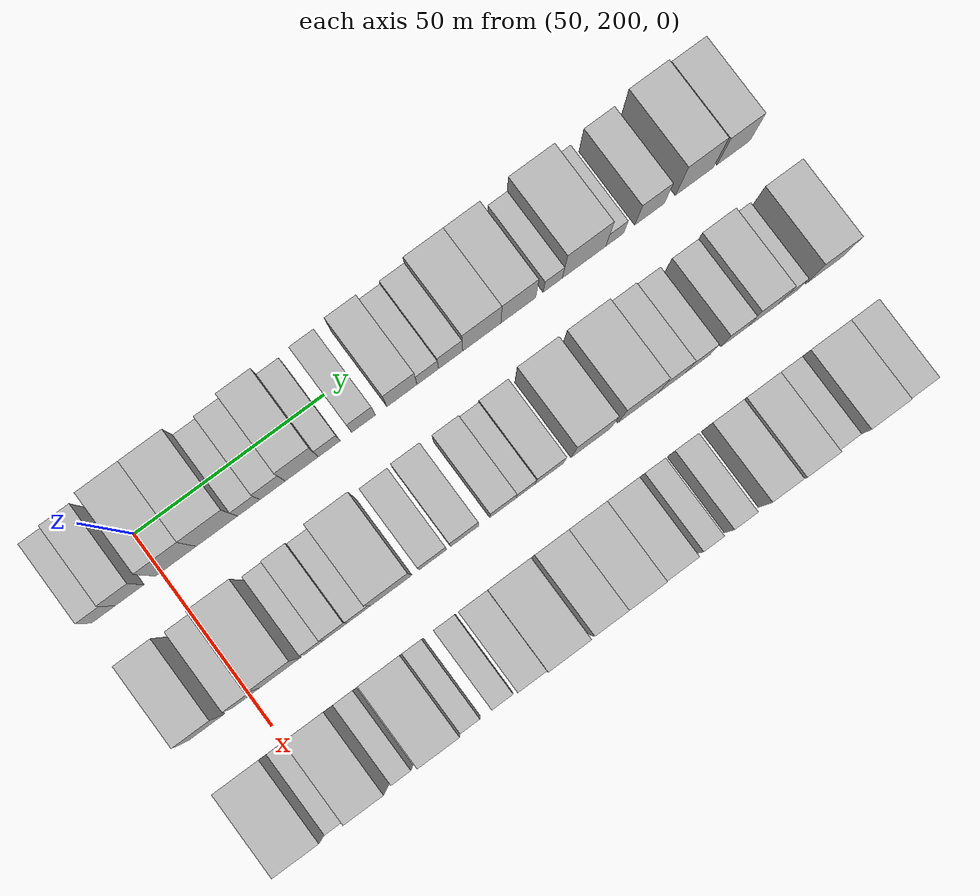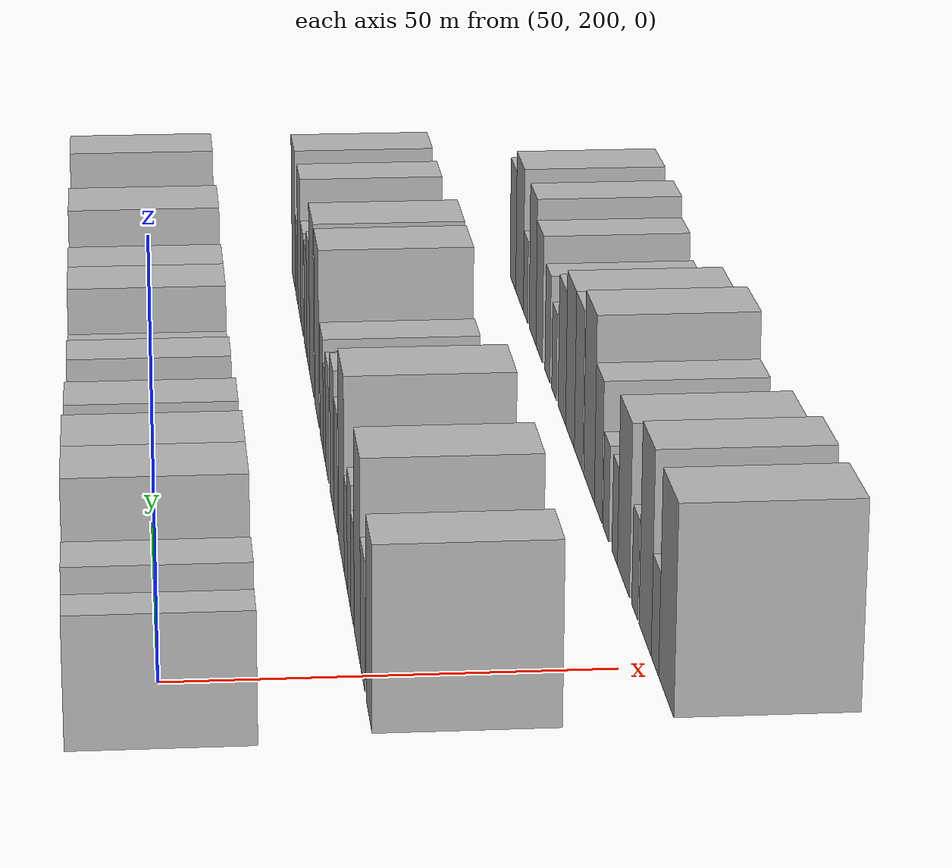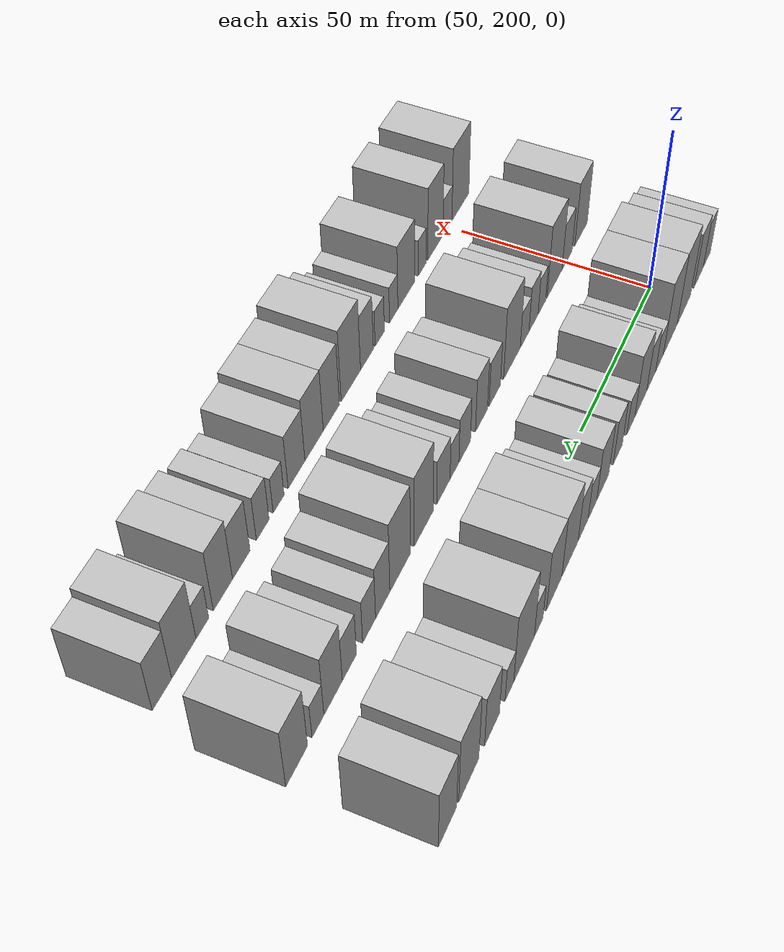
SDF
<sdf version="1.6">
 <world name="default">
  <model name="building_60">
   <static>1</static>
   <pose>50.0000 185.1954 0 0.000000 0.000000 0.000000</pose>
   <link name="link">
    <pose>0 0 7.50 0 0 0</pose>
    <collision name="collision"><geometry><box><size>20.0000 6.0156 15.0000</size></box></geometry></collision>
    <visual name="visual">
     <cast_shadows>0</cast_shadows>
     <geometry><box><size>20.0000 6.0156 15.0000</size></box></geometry>
     <material>
      <script>
       <uri>model://HANNAS_wall/materials/scripts</uri>
       <uri>model://HANNAS_wall/materials/textures</uri>
       <name>vrc/HANNAS_wall</name>
      </script>
     </material>
    </visual>
   </link>
  </model>
  <model name="building_61">
   <static>1</static>
   <pose>50.0000 191.9791 0 0.000000 0.000000 0.000000</pose>
   <link name="link">
    <pose>0 0 9.00 0 0 0</pose>
    <collision name="collision"><geometry><box><size>20.0000 7.5519 18.0000</size></box></geometry></collision>
    <visual name="visual">
     <cast_shadows>0</cast_shadows>
     <geometry><box><size>20.0000 7.5519 18.0000</size></box></geometry>
     <material>
      <script>
       <uri>model://HANNAS_wall/materials/scripts</uri>
       <uri>model://HANNAS_wall/materials/textures</uri>
       <name>vrc/HANNAS_wall</name>
      </script>
     </material>
    </visual>
   </link>
  </model>
  <model name="building_62">
   <static>1</static>
   <pose>50.0000 204.0300 0 0.000000 0.000000 0.000000</pose>
   <link name="link">
    <pose>0 0 12.00 0 0 0</pose>
    <collision name="collision"><geometry><box><size>20.0000 10.5499 24.0000</size></box></geometry></collision>
    <visual name="visual">
     <cast_shadows>0</cast_shadows>
     <geometry><box><size>20.0000 10.5499 24.0000</size></box></geometry>
     <material>
      <script>
       <uri>model://HANNAS_wall/materials/scripts</uri>
       <uri>model://HANNAS_wall/materials/textures</uri>
       <name>vrc/HANNAS_wall</name>
      </script>
     </material>
    </visual>
   </link>
  </model>
  <model name="building_63">
   <static>1</static>
   <pose>50.0000 214.6708 0 0.000000 0.000000 0.000000</pose>
   <link name="link">
    <pose>0 0 12.00 0 0 0</pose>
    <collision name="collision"><geometry><box><size>20.0000 10.7318 24.0000</size></box></geometry></collision>
    <visual name="visual">
     <cast_shadows>0</cast_shadows>
     <geometry><box><size>20.0000 10.7318 24.0000</size></box></geometry>
     <material>
      <script>
       <uri>model://HANNAS_wall/materials/scripts</uri>
       <uri>model://HANNAS_wall/materials/textures</uri>
       <name>vrc/HANNAS_wall</name>
      </script>
     </material>
    </visual>
   </link>
  </model>
  <model name="building_64">
   <static>1</static>
   <pose>50.0000 222.9557 0 0.000000 0.000000 0.000000</pose>
   <link name="link">
    <pose>0 0 6.00 0 0 0</pose>
    <collision name="collision"><geometry><box><size>20.0000 5.8381 12.0000</size></box></geometry></collision>
    <visual name="visual">
     <cast_shadows>0</cast_shadows>
     <geometry><box><size>20.0000 5.8381 12.0000</size></box></geometry>
     <material>
      <script>
       <uri>model://HANNAS_wall/materials/scripts</uri>
       <uri>model://HANNAS_wall/materials/textures</uri>
       <name>vrc/HANNAS_wall</name>
      </script>
     </material>
    </visual>
   </link>
  </model>
  <model name="building_65">
   <static>1</static>
   <pose>50.0000 229.1912 0 0.000000 0.000000 0.000000</pose>
   <link name="link">
    <pose>0 0 7.50 0 0 0</pose>
    <collision name="collision"><geometry><box><size>20.0000 6.6328 15.0000</size></box></geometry></collision>
    <visual name="visual">
     <cast_shadows>0</cast_shadows>
     <geometry><box><size>20.0000 6.6328 15.0000</size></box></geometry>
     <material>
      <script>
       <uri>model://HANNAS_wall/materials/scripts</uri>
       <uri>model://HANNAS_wall/materials/textures</uri>
       <name>vrc/HANNAS_wall</name>
      </script>
     </material>
    </visual>
   </link>
  </model>
  <model name="building_66">
   <static>1</static>
   <pose>50.0000 236.8308 0 0.000000 0.000000 0.000000</pose>
   <link name="link">
    <pose>0 0 10.50 0 0 0</pose>
    <collision name="collision"><geometry><box><size>20.0000 8.6464 21.0000</size></box></geometry></collision>
    <visual name="visual">
     <cast_shadows>0</cast_shadows>
     <geometry><box><size>20.0000 8.6464 21.0000</size></box></geometry>
     <material>
      <script>
       <uri>model://HANNAS_wall/materials/scripts</uri>
       <uri>model://HANNAS_wall/materials/textures</uri>
       <name>vrc/HANNAS_wall</name>
      </script>
     </material>
    </visual>
   </link>
  </model>
  <model name="building_67">
   <static>1</static>
   <pose>50.0000 244.0152 0 0.000000 0.000000 0.000000</pose>
   <link name="link">
    <pose>0 0 6.00 0 0 0</pose>
    <collision name="collision"><geometry><box><size>20.0000 5.7225 12.0000</size></box></geometry></collision>
    <visual name="visual">
     <cast_shadows>0</cast_shadows>
     <geometry><box><size>20.0000 5.7225 12.0000</size></box></geometry>
     <material>
      <script>
       <uri>model://HANNAS_wall/materials/scripts</uri>
       <uri>model://HANNAS_wall/materials/textures</uri>
       <name>vrc/HANNAS_wall</name>
      </script>
     </material>
    </visual>
   </link>
  </model>
  <model name="building_68">
   <static>1</static>
   <pose>50.0000 253.0156 0 0.000000 0.000000 0.000000</pose>
   <link name="link">
    <pose>0 0 7.50 0 0 0</pose>
    <collision name="collision"><geometry><box><size>20.0000 6.2782 15.0000</size></box></geometry></collision>
    <visual name="visual">
     <cast_shadows>0</cast_shadows>
     <geometry><box><size>20.0000 6.2782 15.0000</size></box></geometry>
     <material>
      <script>
       <uri>model://HANNAS_wall/materials/scripts</uri>
       <uri>model://HANNAS_wall/materials/textures</uri>
       <name>vrc/HANNAS_wall</name>
      </script>
     </material>
    </visual>
   </link>
  </model>
  <model name="building_69">
   <static>1</static>
   <pose>50.0000 263.1421 0 0.000000 0.000000 0.000000</pose>
   <link name="link">
    <pose>0 0 9.00 0 0 0</pose>
    <collision name="collision"><geometry><box><size>20.0000 7.9747 18.0000</size></box></geometry></collision>
    <visual name="visual">
     <cast_shadows>0</cast_shadows>
     <geometry><box><size>20.0000 7.9747 18.0000</size></box></geometry>
     <material>
      <script>
       <uri>model://HANNAS_wall/materials/scripts</uri>
       <uri>model://HANNAS_wall/materials/textures</uri>
       <name>vrc/HANNAS_wall</name>
      </script>
     </material>
    </visual>
   </link>
  </model>
  <model name="building_70">
   <static>1</static>
   <pose>50.0000 269.9573 0 0.000000 0.000000 0.000000</pose>
   <link name="link">
    <pose>0 0 6.00 0 0 0</pose>
    <collision name="collision"><geometry><box><size>20.0000 5.6558 12.0000</size></box></geometry></collision>
    <visual name="visual">
     <cast_shadows>0</cast_shadows>
     <geometry><box><size>20.0000 5.6558 12.0000</size></box></geometry>
     <material>
      <script>
       <uri>model://HANNAS_wall/materials/scripts</uri>
       <uri>model://HANNAS_wall/materials/textures</uri>
       <name>vrc/HANNAS_wall</name>
      </script>
     </material>
    </visual>
   </link>
  </model>
  <model name="building_71">
   <static>1</static>
   <pose>50.0000 275.9751 0 0.000000 0.000000 0.000000</pose>
   <link name="link">
    <pose>0 0 7.50 0 0 0</pose>
    <collision name="collision"><geometry><box><size>20.0000 6.3798 15.0000</size></box></geometry></collision>
    <visual name="visual">
     <cast_shadows>0</cast_shadows>
     <geometry><box><size>20.0000 6.3798 15.0000</size></box></geometry>
     <material>
      <script>
       <uri>model://HANNAS_wall/materials/scripts</uri>
       <uri>model://HANNAS_wall/materials/textures</uri>
       <name>vrc/HANNAS_wall</name>
      </script>
     </material>
    </visual>
   </link>
  </model>
  <model name="building_72">
   <static>1</static>
   <pose>50.0000 284.2249 0 0.000000 0.000000 0.000000</pose>
   <link name="link">
    <pose>0 0 10.50 0 0 0</pose>
    <collision name="collision"><geometry><box><size>20.0000 10.1198 21.0000</size></box></geometry></collision>
    <visual name="visual">
     <cast_shadows>0</cast_shadows>
     <geometry><box><size>20.0000 10.1198 21.0000</size></box></geometry>
     <material>
      <script>
       <uri>model://HANNAS_wall/materials/scripts</uri>
       <uri>model://HANNAS_wall/materials/textures</uri>
       <name>vrc/HANNAS_wall</name>
      </script>
     </material>
    </visual>
   </link>
  </model>
  <model name="building_73">
   <static>1</static>
   <pose>50.0000 293.9123 0 0.000000 0.000000 0.000000</pose>
   <link name="link">
    <pose>0 0 10.50 0 0 0</pose>
    <collision name="collision"><geometry><box><size>20.0000 9.2550 21.0000</size></box></geometry></collision>
    <visual name="visual">
     <cast_shadows>0</cast_shadows>
     <geometry><box><size>20.0000 9.2550 21.0000</size></box></geometry>
     <material>
      <script>
       <uri>model://HANNAS_wall/materials/scripts</uri>
       <uri>model://HANNAS_wall/materials/textures</uri>
       <name>vrc/HANNAS_wall</name>
      </script>
     </material>
    </visual>
   </link>
  </model>
  <model name="building_74">
   <static>1</static>
   <pose>50.0000 303.0808 0 0.000000 0.000000 0.000000</pose>
   <link name="link">
    <pose>0 0 6.00 0 0 0</pose>
    <collision name="collision"><geometry><box><size>20.0000 5.0820 12.0000</size></box></geometry></collision>
    <visual name="visual">
     <cast_shadows>0</cast_shadows>
     <geometry><box><size>20.0000 5.0820 12.0000</size></box></geometry>
     <material>
      <script>
       <uri>model://HANNAS_wall/materials/scripts</uri>
       <uri>model://HANNAS_wall/materials/textures</uri>
       <name>vrc/HANNAS_wall</name>
      </script>
     </material>
    </visual>
   </link>
  </model>
  <model name="building_75">
   <static>1</static>
   <pose>50.0000 311.4420 0 0.000000 0.000000 0.000000</pose>
   <link name="link">
    <pose>0 0 12.00 0 0 0</pose>
    <collision name="collision"><geometry><box><size>20.0000 11.6403 24.0000</size></box></geometry></collision>
    <visual name="visual">
     <cast_shadows>0</cast_shadows>
     <geometry><box><size>20.0000 11.6403 24.0000</size></box></geometry>
     <material>
      <script>
       <uri>model://HANNAS_wall/materials/scripts</uri>
       <uri>model://HANNAS_wall/materials/textures</uri>
       <name>vrc/HANNAS_wall</name>
      </script>
     </material>
    </visual>
   </link>
  </model>
  <model name="building_76">
   <static>1</static>
   <pose>50.0000 319.6657 0 0.000000 0.000000 0.000000</pose>
   <link name="link">
    <pose>0 0 6.00 0 0 0</pose>
    <collision name="collision"><geometry><box><size>20.0000 4.8071 12.0000</size></box></geometry></collision>
    <visual name="visual">
     <cast_shadows>0</cast_shadows>
     <geometry><box><size>20.0000 4.8071 12.0000</size></box></geometry>
     <material>
      <script>
       <uri>model://HANNAS_wall/materials/scripts</uri>
       <uri>model://HANNAS_wall/materials/textures</uri>
       <name>vrc/HANNAS_wall</name>
      </script>
     </material>
    </visual>
   </link>
  </model>
  <model name="building_77">
   <static>1</static>
   <pose>50.0000 329.0180 0 0.000000 0.000000 0.000000</pose>
   <link name="link">
    <pose>0 0 9.00 0 0 0</pose>
    <collision name="collision"><geometry><box><size>20.0000 7.8975 18.0000</size></box></geometry></collision>
    <visual name="visual">
     <cast_shadows>0</cast_shadows>
     <geometry><box><size>20.0000 7.8975 18.0000</size></box></geometry>
     <material>
      <script>
       <uri>model://HANNAS_wall/materials/scripts</uri>
       <uri>model://HANNAS_wall/materials/textures</uri>
       <name>vrc/HANNAS_wall</name>
      </script>
     </material>
    </visual>
   </link>
  </model>
  <model name="building_78">
   <static>1</static>
   <pose>50.0000 341.0778 0 0.000000 0.000000 0.000000</pose>
   <link name="link">
    <pose>0 0 12.00 0 0 0</pose>
    <collision name="collision"><geometry><box><size>20.0000 10.2221 24.0000</size></box></geometry></collision>
    <visual name="visual">
     <cast_shadows>0</cast_shadows>
     <geometry><box><size>20.0000 10.2221 24.0000</size></box></geometry>
     <material>
      <script>
       <uri>model://HANNAS_wall/materials/scripts</uri>
       <uri>model://HANNAS_wall/materials/textures</uri>
       <name>vrc/HANNAS_wall</name>
      </script>
     </material>
    </visual>
   </link>
  </model>
  <model name="building_79">
   <static>1</static>
   <pose>50.0000 351.6595 0 0.000000 0.000000 0.000000</pose>
   <link name="link">
    <pose>0 0 10.50 0 0 0</pose>
    <collision name="collision"><geometry><box><size>20.0000 8.9413 21.0000</size></box></geometry></collision>
    <visual name="visual">
     <cast_shadows>0</cast_shadows>
     <geometry><box><size>20.0000 8.9413 21.0000</size></box></geometry>
     <material>
      <script>
       <uri>model://HANNAS_wall/materials/scripts</uri>
       <uri>model://HANNAS_wall/materials/textures</uri>
       <name>vrc/HANNAS_wall</name>
      </script>
     </material>
    </visual>
   </link>
  </model>
  <model name="building_137">
   <static>1</static>
   <pose>82.0000 189.0420 0 0.000000 0.000000 0.000000</pose>
   <link name="link">
    <pose>0 0 10.50 0 0 0</pose>
    <collision name="collision"><geometry><box><size>20.0000 9.2185 21.0000</size></box></geometry></collision>
    <visual name="visual">
     <cast_shadows>0</cast_shadows>
     <geometry><box><size>20.0000 9.2185 21.0000</size></box></geometry>
     <material>
      <script>
       <uri>model://HANNAS_wall/materials/scripts</uri>
       <uri>model://HANNAS_wall/materials/textures</uri>
       <name>vrc/HANNAS_wall</name>
      </script>
     </material>
    </visual>
   </link>
  </model>
  <model name="building_138">
   <static>1</static>
   <pose>82.0000 199.2561 0 0.000000 0.000000 0.000000</pose>
   <link name="link">
    <pose>0 0 7.50 0 0 0</pose>
    <collision name="collision"><geometry><box><size>20.0000 7.2095 15.0000</size></box></geometry></collision>
    <visual name="visual">
     <cast_shadows>0</cast_shadows>
     <geometry><box><size>20.0000 7.2095 15.0000</size></box></geometry>
     <material>
      <script>
       <uri>model://HANNAS_wall/materials/scripts</uri>
       <uri>model://HANNAS_wall/materials/textures</uri>
       <name>vrc/HANNAS_wall</name>
      </script>
     </material>
    </visual>
   </link>
  </model>
  <model name="building_139">
   <static>1</static>
   <pose>82.0000 208.1352 0 0.000000 0.000000 0.000000</pose>
   <link name="link">
    <pose>0 0 12.00 0 0 0</pose>
    <collision name="collision"><geometry><box><size>20.0000 10.5487 24.0000</size></box></geometry></collision>
    <visual name="visual">
     <cast_shadows>0</cast_shadows>
     <geometry><box><size>20.0000 10.5487 24.0000</size></box></geometry>
     <material>
      <script>
       <uri>model://HANNAS_wall/materials/scripts</uri>
       <uri>model://HANNAS_wall/materials/textures</uri>
       <name>vrc/HANNAS_wall</name>
      </script>
     </material>
    </visual>
   </link>
  </model>
  <model name="building_140">
   <static>1</static>
   <pose>82.0000 216.9980 0 0.000000 0.000000 0.000000</pose>
   <link name="link">
    <pose>0 0 6.00 0 0 0</pose>
    <collision name="collision"><geometry><box><size>20.0000 5.1771 12.0000</size></box></geometry></collision>
    <visual name="visual">
     <cast_shadows>0</cast_shadows>
     <geometry><box><size>20.0000 5.1771 12.0000</size></box></geometry>
     <material>
      <script>
       <uri>model://HANNAS_wall/materials/scripts</uri>
       <uri>model://HANNAS_wall/materials/textures</uri>
       <name>vrc/HANNAS_wall</name>
      </script>
     </material>
    </visual>
   </link>
  </model>
  <model name="building_141">
   <static>1</static>
   <pose>82.0000 222.6497 0 0.000000 0.000000 0.000000</pose>
   <link name="link">
    <pose>0 0 7.50 0 0 0</pose>
    <collision name="collision"><geometry><box><size>20.0000 6.1262 15.0000</size></box></geometry></collision>
    <visual name="visual">
     <cast_shadows>0</cast_shadows>
     <geometry><box><size>20.0000 6.1262 15.0000</size></box></geometry>
     <material>
      <script>
       <uri>model://HANNAS_wall/materials/scripts</uri>
       <uri>model://HANNAS_wall/materials/textures</uri>
       <name>vrc/HANNAS_wall</name>
      </script>
     </material>
    </visual>
   </link>
  </model>
  <model name="building_142">
   <static>1</static>
   <pose>82.0000 228.6128 0 0.000000 0.000000 0.000000</pose>
   <link name="link">
    <pose>0 0 6.00 0 0 0</pose>
    <collision name="collision"><geometry><box><size>20.0000 5.7999 12.0000</size></box></geometry></collision>
    <visual name="visual">
     <cast_shadows>0</cast_shadows>
     <geometry><box><size>20.0000 5.7999 12.0000</size></box></geometry>
     <material>
      <script>
       <uri>model://HANNAS_wall/materials/scripts</uri>
       <uri>model://HANNAS_wall/materials/textures</uri>
       <name>vrc/HANNAS_wall</name>
      </script>
     </material>
    </visual>
   </link>
  </model>
  <model name="building_143">
   <static>1</static>
   <pose>82.0000 236.9013 0 0.000000 0.000000 0.000000</pose>
   <link name="link">
    <pose>0 0 12.00 0 0 0</pose>
    <collision name="collision"><geometry><box><size>20.0000 10.7771 24.0000</size></box></geometry></collision>
    <visual name="visual">
     <cast_shadows>0</cast_shadows>
     <geometry><box><size>20.0000 10.7771 24.0000</size></box></geometry>
     <material>
      <script>
       <uri>model://HANNAS_wall/materials/scripts</uri>
       <uri>model://HANNAS_wall/materials/textures</uri>
       <name>vrc/HANNAS_wall</name>
      </script>
     </material>
    </visual>
   </link>
  </model>
  <model name="building_144">
   <static>1</static>
   <pose>82.0000 247.8365 0 0.000000 0.000000 0.000000</pose>
   <link name="link">
    <pose>0 0 7.50 0 0 0</pose>
    <collision name="collision"><geometry><box><size>20.0000 7.0933 15.0000</size></box></geometry></collision>
    <visual name="visual">
     <cast_shadows>0</cast_shadows>
     <geometry><box><size>20.0000 7.0933 15.0000</size></box></geometry>
     <material>
      <script>
       <uri>model://HANNAS_wall/materials/scripts</uri>
       <uri>model://HANNAS_wall/materials/textures</uri>
       <name>vrc/HANNAS_wall</name>
      </script>
     </material>
    </visual>
   </link>
  </model>
  <model name="building_145">
   <static>1</static>
   <pose>82.0000 256.0147 0 0.000000 0.000000 0.000000</pose>
   <link name="link">
    <pose>0 0 9.00 0 0 0</pose>
    <collision name="collision"><geometry><box><size>20.0000 7.2631 18.0000</size></box></geometry></collision>
    <visual name="visual">
     <cast_shadows>0</cast_shadows>
     <geometry><box><size>20.0000 7.2631 18.0000</size></box></geometry>
     <material>
      <script>
       <uri>model://HANNAS_wall/materials/scripts</uri>
       <uri>model://HANNAS_wall/materials/textures</uri>
       <name>vrc/HANNAS_wall</name>
      </script>
     </material>
    </visual>
   </link>
  </model>
  <model name="building_146">
   <static>1</static>
   <pose>82.0000 266.0531 0 0.000000 0.000000 0.000000</pose>
   <link name="link">
    <pose>0 0 7.50 0 0 0</pose>
    <collision name="collision"><geometry><box><size>20.0000 6.8137 15.0000</size></box></geometry></collision>
    <visual name="visual">
     <cast_shadows>0</cast_shadows>
     <geometry><box><size>20.0000 6.8137 15.0000</size></box></geometry>
     <material>
      <script>
       <uri>model://HANNAS_wall/materials/scripts</uri>
       <uri>model://HANNAS_wall/materials/textures</uri>
       <name>vrc/HANNAS_wall</name>
      </script>
     </material>
    </visual>
   </link>
  </model>
  <model name="building_147">
   <static>1</static>
   <pose>82.0000 272.0291 0 0.000000 0.000000 0.000000</pose>
   <link name="link">
    <pose>0 0 6.00 0 0 0</pose>
    <collision name="collision"><geometry><box><size>20.0000 5.1385 12.0000</size></box></geometry></collision>
    <visual name="visual">
     <cast_shadows>0</cast_shadows>
     <geometry><box><size>20.0000 5.1385 12.0000</size></box></geometry>
     <material>
      <script>
       <uri>model://HANNAS_wall/materials/scripts</uri>
       <uri>model://HANNAS_wall/materials/textures</uri>
       <name>vrc/HANNAS_wall</name>
      </script>
     </material>
    </visual>
   </link>
  </model>
  <model name="building_148">
   <static>1</static>
   <pose>82.0000 278.3401 0 0.000000 0.000000 0.000000</pose>
   <link name="link">
    <pose>0 0 7.50 0 0 0</pose>
    <collision name="collision"><geometry><box><size>20.0000 7.4835 15.0000</size></box></geometry></collision>
    <visual name="visual">
     <cast_shadows>0</cast_shadows>
     <geometry><box><size>20.0000 7.4835 15.0000</size></box></geometry>
     <material>
      <script>
       <uri>model://HANNAS_wall/materials/scripts</uri>
       <uri>model://HANNAS_wall/materials/textures</uri>
       <name>vrc/HANNAS_wall</name>
      </script>
     </material>
    </visual>
   </link>
  </model>
  <model name="building_149">
   <static>1</static>
   <pose>82.0000 289.2809 0 0.000000 0.000000 0.000000</pose>
   <link name="link">
    <pose>0 0 12.00 0 0 0</pose>
    <collision name="collision"><geometry><box><size>20.0000 10.3980 24.0000</size></box></geometry></collision>
    <visual name="visual">
     <cast_shadows>0</cast_shadows>
     <geometry><box><size>20.0000 10.3980 24.0000</size></box></geometry>
     <material>
      <script>
       <uri>model://HANNAS_wall/materials/scripts</uri>
       <uri>model://HANNAS_wall/materials/textures</uri>
       <name>vrc/HANNAS_wall</name>
      </script>
     </material>
    </visual>
   </link>
  </model>
  <model name="building_150">
   <static>1</static>
   <pose>82.0000 301.8825 0 0.000000 0.000000 0.000000</pose>
   <link name="link">
    <pose>0 0 12.00 0 0 0</pose>
    <collision name="collision"><geometry><box><size>20.0000 10.8053 24.0000</size></box></geometry></collision>
    <visual name="visual">
     <cast_shadows>0</cast_shadows>
     <geometry><box><size>20.0000 10.8053 24.0000</size></box></geometry>
     <material>
      <script>
       <uri>model://HANNAS_wall/materials/scripts</uri>
       <uri>model://HANNAS_wall/materials/textures</uri>
       <name>vrc/HANNAS_wall</name>
      </script>
     </material>
    </visual>
   </link>
  </model>
  <model name="building_151">
   <static>1</static>
   <pose>82.0000 310.9233 0 0.000000 0.000000 0.000000</pose>
   <link name="link">
    <pose>0 0 9.00 0 0 0</pose>
    <collision name="collision"><geometry><box><size>20.0000 7.2763 18.0000</size></box></geometry></collision>
    <visual name="visual">
     <cast_shadows>0</cast_shadows>
     <geometry><box><size>20.0000 7.2763 18.0000</size></box></geometry>
     <material>
      <script>
       <uri>model://HANNAS_wall/materials/scripts</uri>
       <uri>model://HANNAS_wall/materials/textures</uri>
       <name>vrc/HANNAS_wall</name>
      </script>
     </material>
    </visual>
   </link>
  </model>
  <model name="building_152">
   <static>1</static>
   <pose>82.0000 317.7840 0 0.000000 0.000000 0.000000</pose>
   <link name="link">
    <pose>0 0 7.50 0 0 0</pose>
    <collision name="collision"><geometry><box><size>20.0000 6.4449 15.0000</size></box></geometry></collision>
    <visual name="visual">
     <cast_shadows>0</cast_shadows>
     <geometry><box><size>20.0000 6.4449 15.0000</size></box></geometry>
     <material>
      <script>
       <uri>model://HANNAS_wall/materials/scripts</uri>
       <uri>model://HANNAS_wall/materials/textures</uri>
       <name>vrc/HANNAS_wall</name>
      </script>
     </material>
    </visual>
   </link>
  </model>
  <model name="building_153">
   <static>1</static>
   <pose>82.0000 327.4127 0 0.000000 0.000000 0.000000</pose>
   <link name="link">
    <pose>0 0 7.50 0 0 0</pose>
    <collision name="collision"><geometry><box><size>20.0000 6.8125 15.0000</size></box></geometry></collision>
    <visual name="visual">
     <cast_shadows>0</cast_shadows>
     <geometry><box><size>20.0000 6.8125 15.0000</size></box></geometry>
     <material>
      <script>
       <uri>model://HANNAS_wall/materials/scripts</uri>
       <uri>model://HANNAS_wall/materials/textures</uri>
       <name>vrc/HANNAS_wall</name>
      </script>
     </material>
    </visual>
   </link>
  </model>
  <model name="building_154">
   <static>1</static>
   <pose>82.0000 335.1139 0 0.000000 0.000000 0.000000</pose>
   <link name="link">
    <pose>0 0 10.50 0 0 0</pose>
    <collision name="collision"><geometry><box><size>20.0000 8.5899 21.0000</size></box></geometry></collision>
    <visual name="visual">
     <cast_shadows>0</cast_shadows>
     <geometry><box><size>20.0000 8.5899 21.0000</size></box></geometry>
     <material>
      <script>
       <uri>model://HANNAS_wall/materials/scripts</uri>
       <uri>model://HANNAS_wall/materials/textures</uri>
       <name>vrc/HANNAS_wall</name>
      </script>
     </material>
    </visual>
   </link>
  </model>
  <model name="building_155">
   <static>1</static>
   <pose>82.0000 342.1255 0 0.000000 0.000000 0.000000</pose>
   <link name="link">
    <pose>0 0 6.00 0 0 0</pose>
    <collision name="collision"><geometry><box><size>20.0000 5.4333 12.0000</size></box></geometry></collision>
    <visual name="visual">
     <cast_shadows>0</cast_shadows>
     <geometry><box><size>20.0000 5.4333 12.0000</size></box></geometry>
     <material>
      <script>
       <uri>model://HANNAS_wall/materials/scripts</uri>
       <uri>model://HANNAS_wall/materials/textures</uri>
       <name>vrc/HANNAS_wall</name>
      </script>
     </material>
    </visual>
   </link>
  </model>
  <model name="building_156">
   <static>1</static>
   <pose>82.0000 351.6545 0 0.000000 0.000000 0.000000</pose>
   <link name="link">
    <pose>0 0 10.50 0 0 0</pose>
    <collision name="collision"><geometry><box><size>20.0000 9.6248 21.0000</size></box></geometry></collision>
    <visual name="visual">
     <cast_shadows>0</cast_shadows>
     <geometry><box><size>20.0000 9.6248 21.0000</size></box></geometry>
     <material>
      <script>
       <uri>model://HANNAS_wall/materials/scripts</uri>
       <uri>model://HANNAS_wall/materials/textures</uri>
       <name>vrc/HANNAS_wall</name>
      </script>
     </material>
    </visual>
   </link>
  </model>
  <model name="building_216">
   <static>1</static>
   <pose>114.0000 191.7920 0 0.000000 0.000000 0.000000</pose>
   <link name="link">
    <pose>0 0 12.00 0 0 0</pose>
    <collision name="collision"><geometry><box><size>20.0000 11.2928 24.0000</size></box></geometry></collision>
    <visual name="visual">
     <cast_shadows>0</cast_shadows>
     <geometry><box><size>20.0000 11.2928 24.0000</size></box></geometry>
     <material>
      <script>
       <uri>model://HANNAS_wall/materials/scripts</uri>
       <uri>model://HANNAS_wall/materials/textures</uri>
       <name>vrc/HANNAS_wall</name>
      </script>
     </material>
    </visual>
   </link>
  </model>
  <model name="building_217">
   <static>1</static>
   <pose>114.0000 200.3550 0 0.000000 0.000000 0.000000</pose>
   <link name="link">
    <pose>0 0 6.00 0 0 0</pose>
    <collision name="collision"><geometry><box><size>20.0000 5.8332 12.0000</size></box></geometry></collision>
    <visual name="visual">
     <cast_shadows>0</cast_shadows>
     <geometry><box><size>20.0000 5.8332 12.0000</size></box></geometry>
     <material>
      <script>
       <uri>model://HANNAS_wall/materials/scripts</uri>
       <uri>model://HANNAS_wall/materials/textures</uri>
       <name>vrc/HANNAS_wall</name>
      </script>
     </material>
    </visual>
   </link>
  </model>
  <model name="building_218">
   <static>1</static>
   <pose>114.0000 208.1464 0 0.000000 0.000000 0.000000</pose>
   <link name="link">
    <pose>0 0 12.00 0 0 0</pose>
    <collision name="collision"><geometry><box><size>20.0000 9.7496 24.0000</size></box></geometry></collision>
    <visual name="visual">
     <cast_shadows>0</cast_shadows>
     <geometry><box><size>20.0000 9.7496 24.0000</size></box></geometry>
     <material>
      <script>
       <uri>model://HANNAS_wall/materials/scripts</uri>
       <uri>model://HANNAS_wall/materials/textures</uri>
       <name>vrc/HANNAS_wall</name>
      </script>
     </material>
    </visual>
   </link>
  </model>
  <model name="building_219">
   <static>1</static>
   <pose>114.0000 216.5300 0 0.000000 0.000000 0.000000</pose>
   <link name="link">
    <pose>0 0 6.00 0 0 0</pose>
    <collision name="collision"><geometry><box><size>20.0000 5.0176 12.0000</size></box></geometry></collision>
    <visual name="visual">
     <cast_shadows>0</cast_shadows>
     <geometry><box><size>20.0000 5.0176 12.0000</size></box></geometry>
     <material>
      <script>
       <uri>model://HANNAS_wall/materials/scripts</uri>
       <uri>model://HANNAS_wall/materials/textures</uri>
       <name>vrc/HANNAS_wall</name>
      </script>
     </material>
    </visual>
   </link>
  </model>
  <model name="building_220">
   <static>1</static>
   <pose>114.0000 226.2135 0 0.000000 0.000000 0.000000</pose>
   <link name="link">
    <pose>0 0 10.50 0 0 0</pose>
    <collision name="collision"><geometry><box><size>20.0000 10.3495 21.0000</size></box></geometry></collision>
    <visual name="visual">
     <cast_shadows>0</cast_shadows>
     <geometry><box><size>20.0000 10.3495 21.0000</size></box></geometry>
     <material>
      <script>
       <uri>model://HANNAS_wall/materials/scripts</uri>
       <uri>model://HANNAS_wall/materials/textures</uri>
       <name>vrc/HANNAS_wall</name>
      </script>
     </material>
    </visual>
   </link>
  </model>
  <model name="building_221">
   <static>1</static>
   <pose>114.0000 233.8774 0 0.000000 0.000000 0.000000</pose>
   <link name="link">
    <pose>0 0 6.00 0 0 0</pose>
    <collision name="collision"><geometry><box><size>20.0000 4.9782 12.0000</size></box></geometry></collision>
    <visual name="visual">
     <cast_shadows>0</cast_shadows>
     <geometry><box><size>20.0000 4.9782 12.0000</size></box></geometry>
     <material>
      <script>
       <uri>model://HANNAS_wall/materials/scripts</uri>
       <uri>model://HANNAS_wall/materials/textures</uri>
       <name>vrc/HANNAS_wall</name>
      </script>
     </material>
    </visual>
   </link>
  </model>
  <model name="building_222">
   <static>1</static>
   <pose>114.0000 242.0601 0 0.000000 0.000000 0.000000</pose>
   <link name="link">
    <pose>0 0 6.00 0 0 0</pose>
    <collision name="collision"><geometry><box><size>20.0000 5.3872 12.0000</size></box></geometry></collision>
    <visual name="visual">
     <cast_shadows>0</cast_shadows>
     <geometry><box><size>20.0000 5.3872 12.0000</size></box></geometry>
     <material>
      <script>
       <uri>model://HANNAS_wall/materials/scripts</uri>
       <uri>model://HANNAS_wall/materials/textures</uri>
       <name>vrc/HANNAS_wall</name>
      </script>
     </material>
    </visual>
   </link>
  </model>
  <model name="building_223">
   <static>1</static>
   <pose>114.0000 249.3915 0 0.000000 0.000000 0.000000</pose>
   <link name="link">
    <pose>0 0 9.00 0 0 0</pose>
    <collision name="collision"><geometry><box><size>20.0000 7.2756 18.0000</size></box></geometry></collision>
    <visual name="visual">
     <cast_shadows>0</cast_shadows>
     <geometry><box><size>20.0000 7.2756 18.0000</size></box></geometry>
     <material>
      <script>
       <uri>model://HANNAS_wall/materials/scripts</uri>
       <uri>model://HANNAS_wall/materials/textures</uri>
       <name>vrc/HANNAS_wall</name>
      </script>
     </material>
    </visual>
   </link>
  </model>
  <model name="building_224">
   <static>1</static>
   <pose>114.0000 258.3550 0 0.000000 0.000000 0.000000</pose>
   <link name="link">
    <pose>0 0 12.00 0 0 0</pose>
    <collision name="collision"><geometry><box><size>20.0000 10.6514 24.0000</size></box></geometry></collision>
    <visual name="visual">
     <cast_shadows>0</cast_shadows>
     <geometry><box><size>20.0000 10.6514 24.0000</size></box></geometry>
     <material>
      <script>
       <uri>model://HANNAS_wall/materials/scripts</uri>
       <uri>model://HANNAS_wall/materials/textures</uri>
       <name>vrc/HANNAS_wall</name>
      </script>
     </material>
    </visual>
   </link>
  </model>
  <model name="building_225">
   <static>1</static>
   <pose>114.0000 268.9572 0 0.000000 0.000000 0.000000</pose>
   <link name="link">
    <pose>0 0 10.50 0 0 0</pose>
    <collision name="collision"><geometry><box><size>20.0000 8.5529 21.0000</size></box></geometry></collision>
    <visual name="visual">
     <cast_shadows>0</cast_shadows>
     <geometry><box><size>20.0000 8.5529 21.0000</size></box></geometry>
     <material>
      <script>
       <uri>model://HANNAS_wall/materials/scripts</uri>
       <uri>model://HANNAS_wall/materials/textures</uri>
       <name>vrc/HANNAS_wall</name>
      </script>
     </material>
    </visual>
   </link>
  </model>
  <model name="building_226">
   <static>1</static>
   <pose>114.0000 277.9991 0 0.000000 0.000000 0.000000</pose>
   <link name="link">
    <pose>0 0 10.50 0 0 0</pose>
    <collision name="collision"><geometry><box><size>20.0000 9.5309 21.0000</size></box></geometry></collision>
    <visual name="visual">
     <cast_shadows>0</cast_shadows>
     <geometry><box><size>20.0000 9.5309 21.0000</size></box></geometry>
     <material>
      <script>
       <uri>model://HANNAS_wall/materials/scripts</uri>
       <uri>model://HANNAS_wall/materials/textures</uri>
       <name>vrc/HANNAS_wall</name>
      </script>
     </material>
    </visual>
   </link>
  </model>
  <model name="building_227">
   <static>1</static>
   <pose>114.0000 286.9954 0 0.000000 0.000000 0.000000</pose>
   <link name="link">
    <pose>0 0 9.00 0 0 0</pose>
    <collision name="collision"><geometry><box><size>20.0000 8.4617 18.0000</size></box></geometry></collision>
    <visual name="visual">
     <cast_shadows>0</cast_shadows>
     <geometry><box><size>20.0000 8.4617 18.0000</size></box></geometry>
     <material>
      <script>
       <uri>model://HANNAS_wall/materials/scripts</uri>
       <uri>model://HANNAS_wall/materials/textures</uri>
       <name>vrc/HANNAS_wall</name>
      </script>
     </material>
    </visual>
   </link>
  </model>
  <model name="building_228">
   <static>1</static>
   <pose>114.0000 295.9008 0 0.000000 0.000000 0.000000</pose>
   <link name="link">
    <pose>0 0 6.00 0 0 0</pose>
    <collision name="collision"><geometry><box><size>20.0000 5.3491 12.0000</size></box></geometry></collision>
    <visual name="visual">
     <cast_shadows>0</cast_shadows>
     <geometry><box><size>20.0000 5.3491 12.0000</size></box></geometry>
     <material>
      <script>
       <uri>model://HANNAS_wall/materials/scripts</uri>
       <uri>model://HANNAS_wall/materials/textures</uri>
       <name>vrc/HANNAS_wall</name>
      </script>
     </material>
    </visual>
   </link>
  </model>
  <model name="building_229">
   <static>1</static>
   <pose>114.0000 303.5991 0 0.000000 0.000000 0.000000</pose>
   <link name="link">
    <pose>0 0 7.50 0 0 0</pose>
    <collision name="collision"><geometry><box><size>20.0000 6.0476 15.0000</size></box></geometry></collision>
    <visual name="visual">
     <cast_shadows>0</cast_shadows>
     <geometry><box><size>20.0000 6.0476 15.0000</size></box></geometry>
     <material>
      <script>
       <uri>model://HANNAS_wall/materials/scripts</uri>
       <uri>model://HANNAS_wall/materials/textures</uri>
       <name>vrc/HANNAS_wall</name>
      </script>
     </material>
    </visual>
   </link>
  </model>
  <model name="building_230">
   <static>1</static>
   <pose>114.0000 313.6535 0 0.000000 0.000000 0.000000</pose>
   <link name="link">
    <pose>0 0 9.00 0 0 0</pose>
    <collision name="collision"><geometry><box><size>20.0000 8.0613 18.0000</size></box></geometry></collision>
    <visual name="visual">
     <cast_shadows>0</cast_shadows>
     <geometry><box><size>20.0000 8.0613 18.0000</size></box></geometry>
     <material>
      <script>
       <uri>model://HANNAS_wall/materials/scripts</uri>
       <uri>model://HANNAS_wall/materials/textures</uri>
       <name>vrc/HANNAS_wall</name>
      </script>
     </material>
    </visual>
   </link>
  </model>
  <model name="building_231">
   <static>1</static>
   <pose>114.0000 322.0093 0 0.000000 0.000000 0.000000</pose>
   <link name="link">
    <pose>0 0 10.50 0 0 0</pose>
    <collision name="collision"><geometry><box><size>20.0000 8.6503 21.0000</size></box></geometry></collision>
    <visual name="visual">
     <cast_shadows>0</cast_shadows>
     <geometry><box><size>20.0000 8.6503 21.0000</size></box></geometry>
     <material>
      <script>
       <uri>model://HANNAS_wall/materials/scripts</uri>
       <uri>model://HANNAS_wall/materials/textures</uri>
       <name>vrc/HANNAS_wall</name>
      </script>
     </material>
    </visual>
   </link>
  </model>
  <model name="building_232">
   <static>1</static>
   <pose>114.0000 331.1112 0 0.000000 0.000000 0.000000</pose>
   <link name="link">
    <pose>0 0 6.00 0 0 0</pose>
    <collision name="collision"><geometry><box><size>20.0000 5.5535 12.0000</size></box></geometry></collision>
    <visual name="visual">
     <cast_shadows>0</cast_shadows>
     <geometry><box><size>20.0000 5.5535 12.0000</size></box></geometry>
     <material>
      <script>
       <uri>model://HANNAS_wall/materials/scripts</uri>
       <uri>model://HANNAS_wall/materials/textures</uri>
       <name>vrc/HANNAS_wall</name>
      </script>
     </material>
    </visual>
   </link>
  </model>
  <model name="building_233">
   <static>1</static>
   <pose>114.0000 339.0271 0 0.000000 0.000000 0.000000</pose>
   <link name="link">
    <pose>0 0 10.50 0 0 0</pose>
    <collision name="collision"><geometry><box><size>20.0000 10.2783 21.0000</size></box></geometry></collision>
    <visual name="visual">
     <cast_shadows>0</cast_shadows>
     <geometry><box><size>20.0000 10.2783 21.0000</size></box></geometry>
     <material>
      <script>
       <uri>model://HANNAS_wall/materials/scripts</uri>
       <uri>model://HANNAS_wall/materials/textures</uri>
       <name>vrc/HANNAS_wall</name>
      </script>
     </material>
    </visual>
   </link>
  </model>
  <model name="building_234">
   <static>1</static>
   <pose>114.0000 348.1678 0 0.000000 0.000000 0.000000</pose>
   <link name="link">
    <pose>0 0 9.00 0 0 0</pose>
    <collision name="collision"><geometry><box><size>20.0000 8.0033 18.0000</size></box></geometry></collision>
    <visual name="visual">
     <cast_shadows>0</cast_shadows>
     <geometry><box><size>20.0000 8.0033 18.0000</size></box></geometry>
     <material>
      <script>
       <uri>model://HANNAS_wall/materials/scripts</uri>
       <uri>model://HANNAS_wall/materials/textures</uri>
       <name>vrc/HANNAS_wall</name>
      </script>
     </material>
    </visual>
   </link>
  </model>
 </world>
</sdf>
